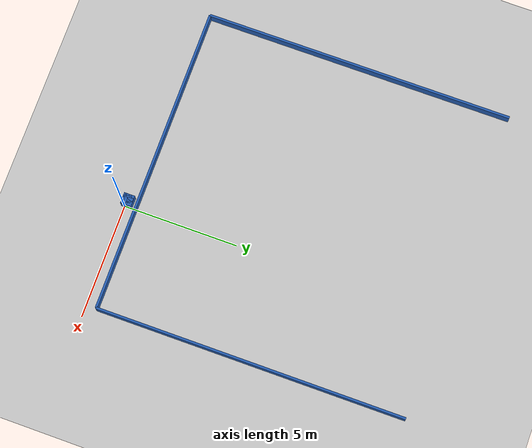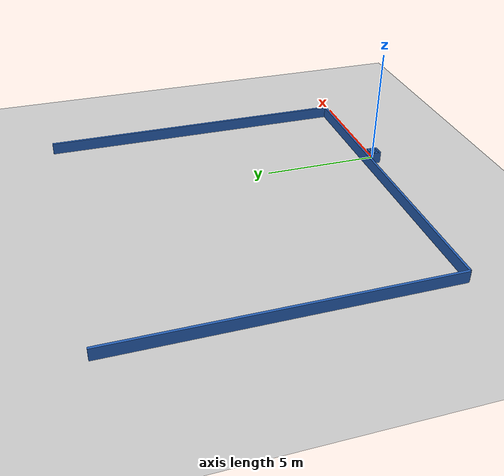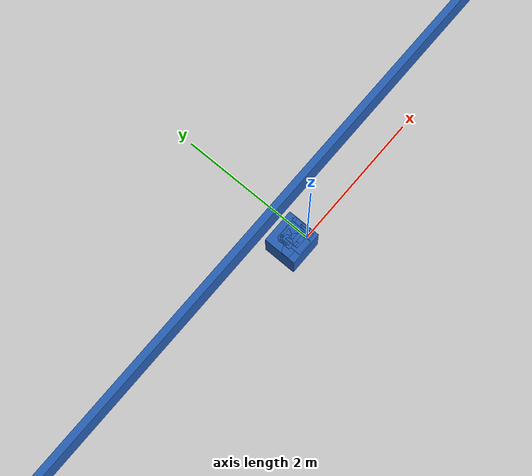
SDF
<?xml version="1.0" ?>
    <sdf version="1.5">
      <world name="default">
        <!-- A global light source -->
        <include>
          <uri>model://sun</uri>
        </include>
        <!-- A ground plane -->
        <include>
          <uri>model://ground_plane</uri>
        </include>

    <model name='libopen_space_final_T2B_90_7'>
      <static>1</static>
      <pose frame=''>-0.225000 0.075000 0.000000 0.000000 0.000000 0.000000</pose>
      <link name='link'>
        <inertial>
          <mass>1</mass>
          <inertia>
            <ixx>0.145833</ixx>
            <ixy>0</ixy>
            <ixz>0</ixz>
            <iyy>0.145833</iyy>
            <iyz>0</iyz>
            <izz>0.125</izz>
          </inertia>
        </inertial>
        <collision name='collision'>
          <geometry>
            <box>
              <size>0.47 0.28 1</size>
            </box>
          </geometry>
          <max_contacts>10</max_contacts>
          <surface>
            <contact>
              <ode/>
            </contact>
            <bounce/>
            <friction>
              <torsional>
                <ode/>
              </torsional>
              <ode/>
            </friction>
          </surface>
        </collision>
        <visual name='visual'>
          <geometry>
            <box>
              <size>0.47 0.28 1</size>
            </box>
          </geometry>
	    <material>
              <ambient>0.152000 0.379000 0.720000 1</ambient>
	      <diffuse>0.152000 0.379000 0.720000 1</diffuse>
          </material>
          <material>
            <script>
              <name>Gazebo/Grey</name>
              <uri>file://media/materials/scripts/gazebo.material</uri>
            </script>
          </material>
        </visual>
        <self_collide>0</self_collide>
        <kinematic>0</kinematic>
        <gravity>1</gravity>
      </link>
      <plugin name='libopen_space_final_T2B_90_7' filename='libopen_space_final_T2B_90_7.so'/>
    </model>

    <model name='libopen_space_final_T2B_81_89'>
      <static>1</static>
      <pose frame=''>-0.225000 0.075000 0.000000 0.000000 0.000000 0.000000</pose>
      <link name='link'>
        <inertial>
          <mass>1</mass>
          <inertia>
            <ixx>0.145833</ixx>
            <ixy>0</ixy>
            <ixz>0</ixz>
            <iyy>0.145833</iyy>
            <iyz>0</iyz>
            <izz>0.125</izz>
          </inertia>
        </inertial>
        <collision name='collision'>
          <geometry>
            <box>
              <size>0.29 0.11 1</size>
            </box>
          </geometry>
          <max_contacts>10</max_contacts>
          <surface>
            <contact>
              <ode/>
            </contact>
            <bounce/>
            <friction>
              <torsional>
                <ode/>
              </torsional>
              <ode/>
            </friction>
          </surface>
        </collision>
        <visual name='visual'>
          <geometry>
            <box>
              <size>0.29 0.11 1</size>
            </box>
          </geometry>
	    <material>
              <ambient>0.152000 0.379000 0.720000 1</ambient>
	      <diffuse>0.152000 0.379000 0.720000 1</diffuse>
          </material>
          <material>
            <script>
              <name>Gazebo/Grey</name>
              <uri>file://media/materials/scripts/gazebo.material</uri>
            </script>
          </material>
        </visual>
        <self_collide>0</self_collide>
        <kinematic>0</kinematic>
        <gravity>1</gravity>
      </link>
      <plugin name='libopen_space_final_T2B_81_89' filename='libopen_space_final_T2B_81_89.so'/>
    </model>

    <model name='libopen_space_final_T2B_103_35'>
      <static>1</static>
      <pose frame=''>-0.225000 0.075000 0.000000 0.000000 0.000000 0.000000</pose>
      <link name='link'>
        <inertial>
          <mass>1</mass>
          <inertia>
            <ixx>0.145833</ixx>
            <ixy>0</ixy>
            <ixz>0</ixz>
            <iyy>0.145833</iyy>
            <iyz>0</iyz>
            <izz>0.125</izz>
          </inertia>
        </inertial>
        <collision name='collision'>
          <geometry>
            <box>
              <size>0.48 0.47 1</size>
            </box>
          </geometry>
          <max_contacts>10</max_contacts>
          <surface>
            <contact>
              <ode/>
            </contact>
            <bounce/>
            <friction>
              <torsional>
                <ode/>
              </torsional>
              <ode/>
            </friction>
          </surface>
        </collision>
        <visual name='visual'>
          <geometry>
            <box>
              <size>0.48 0.47 1</size>
            </box>
          </geometry>
	    <material>
              <ambient>0.152000 0.379000 0.720000 1</ambient>
	      <diffuse>0.152000 0.379000 0.720000 1</diffuse>
          </material>
          <material>
            <script>
              <name>Gazebo/Grey</name>
              <uri>file://media/materials/scripts/gazebo.material</uri>
            </script>
          </material>
        </visual>
        <self_collide>0</self_collide>
        <kinematic>0</kinematic>
        <gravity>1</gravity>
      </link>
      <plugin name='libopen_space_final_T2B_103_35' filename='libopen_space_final_T2B_103_35.so'/>
    </model>

    <model name='libopen_space_final_T2B_115_72'>
      <static>1</static>
      <pose frame=''>-0.225000 0.075000 0.000000 0.000000 0.000000 0.000000</pose>
      <link name='link'>
        <inertial>
          <mass>1</mass>
          <inertia>
            <ixx>0.145833</ixx>
            <ixy>0</ixy>
            <ixz>0</ixz>
            <iyy>0.145833</iyy>
            <iyz>0</iyz>
            <izz>0.125</izz>
          </inertia>
        </inertial>
        <collision name='collision'>
          <geometry>
            <box>
              <size>0.25 0.25 1</size>
            </box>
          </geometry>
          <max_contacts>10</max_contacts>
          <surface>
            <contact>
              <ode/>
            </contact>
            <bounce/>
            <friction>
              <torsional>
                <ode/>
              </torsional>
              <ode/>
            </friction>
          </surface>
        </collision>
        <visual name='visual'>
          <geometry>
            <box>
              <size>0.25 0.25 1</size>
            </box>
          </geometry>
	    <material>
              <ambient>0.152000 0.379000 0.720000 1</ambient>
	      <diffuse>0.152000 0.379000 0.720000 1</diffuse>
          </material>
          <material>
            <script>
              <name>Gazebo/Grey</name>
              <uri>file://media/materials/scripts/gazebo.material</uri>
            </script>
          </material>
        </visual>
        <self_collide>0</self_collide>
        <kinematic>0</kinematic>
        <gravity>1</gravity>
      </link>
      <plugin name='libopen_space_final_T2B_115_72' filename='libopen_space_final_T2B_115_72.so'/>
    </model>

    <model name='libopen_space_final_T2B_77_83'>
      <static>1</static>
      <pose frame=''>-0.225000 0.075000 0.000000 0.000000 0.000000 0.000000</pose>
      <link name='link'>
        <inertial>
          <mass>1</mass>
          <inertia>
            <ixx>0.145833</ixx>
            <ixy>0</ixy>
            <ixz>0</ixz>
            <iyy>0.145833</iyy>
            <iyz>0</iyz>
            <izz>0.125</izz>
          </inertia>
        </inertial>
        <collision name='collision'>
          <geometry>
            <box>
              <size>0.28 0.15 1</size>
            </box>
          </geometry>
          <max_contacts>10</max_contacts>
          <surface>
            <contact>
              <ode/>
            </contact>
            <bounce/>
            <friction>
              <torsional>
                <ode/>
              </torsional>
              <ode/>
            </friction>
          </surface>
        </collision>
        <visual name='visual'>
          <geometry>
            <box>
              <size>0.28 0.15 1</size>
            </box>
          </geometry>
	    <material>
              <ambient>0.152000 0.379000 0.720000 1</ambient>
	      <diffuse>0.152000 0.379000 0.720000 1</diffuse>
          </material>
          <material>
            <script>
              <name>Gazebo/Grey</name>
              <uri>file://media/materials/scripts/gazebo.material</uri>
            </script>
          </material>
        </visual>
        <self_collide>0</self_collide>
        <kinematic>0</kinematic>
        <gravity>1</gravity>
      </link>
      <plugin name='libopen_space_final_T2B_77_83' filename='libopen_space_final_T2B_77_83.so'/>
    </model>

    <model name='libopen_space_final_T2B_118_43'>
      <static>1</static>
      <pose frame=''>-0.225000 0.075000 0.000000 0.000000 0.000000 0.000000</pose>
      <link name='link'>
        <inertial>
          <mass>1</mass>
          <inertia>
            <ixx>0.145833</ixx>
            <ixy>0</ixy>
            <ixz>0</ixz>
            <iyy>0.145833</iyy>
            <iyz>0</iyz>
            <izz>0.125</izz>
          </inertia>
        </inertial>
        <collision name='collision'>
          <geometry>
            <box>
              <size>0.17 0.16 1</size>
            </box>
          </geometry>
          <max_contacts>10</max_contacts>
          <surface>
            <contact>
              <ode/>
            </contact>
            <bounce/>
            <friction>
              <torsional>
                <ode/>
              </torsional>
              <ode/>
            </friction>
          </surface>
        </collision>
        <visual name='visual'>
          <geometry>
            <box>
              <size>0.17 0.16 1</size>
            </box>
          </geometry>
	    <material>
              <ambient>0.152000 0.379000 0.720000 1</ambient>
	      <diffuse>0.152000 0.379000 0.720000 1</diffuse>
          </material>
          <material>
            <script>
              <name>Gazebo/Grey</name>
              <uri>file://media/materials/scripts/gazebo.material</uri>
            </script>
          </material>
        </visual>
        <self_collide>0</self_collide>
        <kinematic>0</kinematic>
        <gravity>1</gravity>
      </link>
      <plugin name='libopen_space_final_T2B_118_43' filename='libopen_space_final_T2B_118_43.so'/>
    </model>

    <model name='libopen_space_final_T2B_85_42'>
      <static>1</static>
      <pose frame=''>-0.225000 0.075000 0.000000 0.000000 0.000000 0.000000</pose>
      <link name='link'>
        <inertial>
          <mass>1</mass>
          <inertia>
            <ixx>0.145833</ixx>
            <ixy>0</ixy>
            <ixz>0</ixz>
            <iyy>0.145833</iyy>
            <iyz>0</iyz>
            <izz>0.125</izz>
          </inertia>
        </inertial>
        <collision name='collision'>
          <geometry>
            <box>
              <size>0.13 0.22 1</size>
            </box>
          </geometry>
          <max_contacts>10</max_contacts>
          <surface>
            <contact>
              <ode/>
            </contact>
            <bounce/>
            <friction>
              <torsional>
                <ode/>
              </torsional>
              <ode/>
            </friction>
          </surface>
        </collision>
        <visual name='visual'>
          <geometry>
            <box>
              <size>0.13 0.22 1</size>
            </box>
          </geometry>
	    <material>
              <ambient>0.152000 0.379000 0.720000 1</ambient>
	      <diffuse>0.152000 0.379000 0.720000 1</diffuse>
          </material>
          <material>
            <script>
              <name>Gazebo/Grey</name>
              <uri>file://media/materials/scripts/gazebo.material</uri>
            </script>
          </material>
        </visual>
        <self_collide>0</self_collide>
        <kinematic>0</kinematic>
        <gravity>1</gravity>
      </link>
      <plugin name='libopen_space_final_T2B_85_42' filename='libopen_space_final_T2B_85_42.so'/>
    </model>

    <model name='libopen_space_final_T2B_57_87'>
      <static>1</static>
      <pose frame=''>-0.225000 0.075000 0.000000 0.000000 0.000000 0.000000</pose>
      <link name='link'>
        <inertial>
          <mass>1</mass>
          <inertia>
            <ixx>0.145833</ixx>
            <ixy>0</ixy>
            <ixz>0</ixz>
            <iyy>0.145833</iyy>
            <iyz>0</iyz>
            <izz>0.125</izz>
          </inertia>
        </inertial>
        <collision name='collision'>
          <geometry>
            <box>
              <size>0.41 0.37 1</size>
            </box>
          </geometry>
          <max_contacts>10</max_contacts>
          <surface>
            <contact>
              <ode/>
            </contact>
            <bounce/>
            <friction>
              <torsional>
                <ode/>
              </torsional>
              <ode/>
            </friction>
          </surface>
        </collision>
        <visual name='visual'>
          <geometry>
            <box>
              <size>0.41 0.37 1</size>
            </box>
          </geometry>
	    <material>
              <ambient>0.152000 0.379000 0.720000 1</ambient>
	      <diffuse>0.152000 0.379000 0.720000 1</diffuse>
          </material>
          <material>
            <script>
              <name>Gazebo/Grey</name>
              <uri>file://media/materials/scripts/gazebo.material</uri>
            </script>
          </material>
        </visual>
        <self_collide>0</self_collide>
        <kinematic>0</kinematic>
        <gravity>1</gravity>
      </link>
      <plugin name='libopen_space_final_T2B_57_87' filename='libopen_space_final_T2B_57_87.so'/>
    </model>

    <model name='libopen_space_final_T2B_145_37'>
      <static>1</static>
      <pose frame=''>-0.225000 0.075000 0.000000 0.000000 0.000000 0.000000</pose>
      <link name='link'>
        <inertial>
          <mass>1</mass>
          <inertia>
            <ixx>0.145833</ixx>
            <ixy>0</ixy>
            <ixz>0</ixz>
            <iyy>0.145833</iyy>
            <iyz>0</iyz>
            <izz>0.125</izz>
          </inertia>
        </inertial>
        <collision name='collision'>
          <geometry>
            <box>
              <size>0.47 0.20 1</size>
            </box>
          </geometry>
          <max_contacts>10</max_contacts>
          <surface>
            <contact>
              <ode/>
            </contact>
            <bounce/>
            <friction>
              <torsional>
                <ode/>
              </torsional>
              <ode/>
            </friction>
          </surface>
        </collision>
        <visual name='visual'>
          <geometry>
            <box>
              <size>0.47 0.20 1</size>
            </box>
          </geometry>
	    <material>
              <ambient>0.152000 0.379000 0.720000 1</ambient>
	      <diffuse>0.152000 0.379000 0.720000 1</diffuse>
          </material>
          <material>
            <script>
              <name>Gazebo/Grey</name>
              <uri>file://media/materials/scripts/gazebo.material</uri>
            </script>
          </material>
        </visual>
        <self_collide>0</self_collide>
        <kinematic>0</kinematic>
        <gravity>1</gravity>
      </link>
      <plugin name='libopen_space_final_T2B_145_37' filename='libopen_space_final_T2B_145_37.so'/>
    </model>

    <model name='libopen_space_final_T2B_73_55'>
      <static>1</static>
      <pose frame=''>-0.225000 0.075000 0.000000 0.000000 0.000000 0.000000</pose>
      <link name='link'>
        <inertial>
          <mass>1</mass>
          <inertia>
            <ixx>0.145833</ixx>
            <ixy>0</ixy>
            <ixz>0</ixz>
            <iyy>0.145833</iyy>
            <iyz>0</iyz>
            <izz>0.125</izz>
          </inertia>
        </inertial>
        <collision name='collision'>
          <geometry>
            <box>
              <size>0.22 0.31 1</size>
            </box>
          </geometry>
          <max_contacts>10</max_contacts>
          <surface>
            <contact>
              <ode/>
            </contact>
            <bounce/>
            <friction>
              <torsional>
                <ode/>
              </torsional>
              <ode/>
            </friction>
          </surface>
        </collision>
        <visual name='visual'>
          <geometry>
            <box>
              <size>0.22 0.31 1</size>
            </box>
          </geometry>
	    <material>
              <ambient>0.152000 0.379000 0.720000 1</ambient>
	      <diffuse>0.152000 0.379000 0.720000 1</diffuse>
          </material>
          <material>
            <script>
              <name>Gazebo/Grey</name>
              <uri>file://media/materials/scripts/gazebo.material</uri>
            </script>
          </material>
        </visual>
        <self_collide>0</self_collide>
        <kinematic>0</kinematic>
        <gravity>1</gravity>
      </link>
      <plugin name='libopen_space_final_T2B_73_55' filename='libopen_space_final_T2B_73_55.so'/>
    </model>

    <model name='libopen_space_final_T2B_56_75'>
      <static>1</static>
      <pose frame=''>-0.225000 0.075000 0.000000 0.000000 0.000000 0.000000</pose>
      <link name='link'>
        <inertial>
          <mass>1</mass>
          <inertia>
            <ixx>0.145833</ixx>
            <ixy>0</ixy>
            <ixz>0</ixz>
            <iyy>0.145833</iyy>
            <iyz>0</iyz>
            <izz>0.125</izz>
          </inertia>
        </inertial>
        <collision name='collision'>
          <geometry>
            <box>
              <size>0.19 0.16 1</size>
            </box>
          </geometry>
          <max_contacts>10</max_contacts>
          <surface>
            <contact>
              <ode/>
            </contact>
            <bounce/>
            <friction>
              <torsional>
                <ode/>
              </torsional>
              <ode/>
            </friction>
          </surface>
        </collision>
        <visual name='visual'>
          <geometry>
            <box>
              <size>0.19 0.16 1</size>
            </box>
          </geometry>
	    <material>
              <ambient>0.152000 0.379000 0.720000 1</ambient>
	      <diffuse>0.152000 0.379000 0.720000 1</diffuse>
          </material>
          <material>
            <script>
              <name>Gazebo/Grey</name>
              <uri>file://media/materials/scripts/gazebo.material</uri>
            </script>
          </material>
        </visual>
        <self_collide>0</self_collide>
        <kinematic>0</kinematic>
        <gravity>1</gravity>
      </link>
      <plugin name='libopen_space_final_T2B_56_75' filename='libopen_space_final_T2B_56_75.so'/>
    </model>

    <model name='libopen_space_final_T2B_51_63'>
      <static>1</static>
      <pose frame=''>-0.225000 0.075000 0.000000 0.000000 0.000000 0.000000</pose>
      <link name='link'>
        <inertial>
          <mass>1</mass>
          <inertia>
            <ixx>0.145833</ixx>
            <ixy>0</ixy>
            <ixz>0</ixz>
            <iyy>0.145833</iyy>
            <iyz>0</iyz>
            <izz>0.125</izz>
          </inertia>
        </inertial>
        <collision name='collision'>
          <geometry>
            <box>
              <size>0.22 0.44 1</size>
            </box>
          </geometry>
          <max_contacts>10</max_contacts>
          <surface>
            <contact>
              <ode/>
            </contact>
            <bounce/>
            <friction>
              <torsional>
                <ode/>
              </torsional>
              <ode/>
            </friction>
          </surface>
        </collision>
        <visual name='visual'>
          <geometry>
            <box>
              <size>0.22 0.44 1</size>
            </box>
          </geometry>
	    <material>
              <ambient>0.152000 0.379000 0.720000 1</ambient>
	      <diffuse>0.152000 0.379000 0.720000 1</diffuse>
          </material>
          <material>
            <script>
              <name>Gazebo/Grey</name>
              <uri>file://media/materials/scripts/gazebo.material</uri>
            </script>
          </material>
        </visual>
        <self_collide>0</self_collide>
        <kinematic>0</kinematic>
        <gravity>1</gravity>
      </link>
      <plugin name='libopen_space_final_T2B_51_63' filename='libopen_space_final_T2B_51_63.so'/>
    </model>

    <model name='libopen_space_final_T2B_112_54'>
      <static>1</static>
      <pose frame=''>-0.225000 0.075000 0.000000 0.000000 0.000000 0.000000</pose>
      <link name='link'>
        <inertial>
          <mass>1</mass>
          <inertia>
            <ixx>0.145833</ixx>
            <ixy>0</ixy>
            <ixz>0</ixz>
            <iyy>0.145833</iyy>
            <iyz>0</iyz>
            <izz>0.125</izz>
          </inertia>
        </inertial>
        <collision name='collision'>
          <geometry>
            <box>
              <size>0.34 0.26 1</size>
            </box>
          </geometry>
          <max_contacts>10</max_contacts>
          <surface>
            <contact>
              <ode/>
            </contact>
            <bounce/>
            <friction>
              <torsional>
                <ode/>
              </torsional>
              <ode/>
            </friction>
          </surface>
        </collision>
        <visual name='visual'>
          <geometry>
            <box>
              <size>0.34 0.26 1</size>
            </box>
          </geometry>
	    <material>
              <ambient>0.152000 0.379000 0.720000 1</ambient>
	      <diffuse>0.152000 0.379000 0.720000 1</diffuse>
          </material>
          <material>
            <script>
              <name>Gazebo/Grey</name>
              <uri>file://media/materials/scripts/gazebo.material</uri>
            </script>
          </material>
        </visual>
        <self_collide>0</self_collide>
        <kinematic>0</kinematic>
        <gravity>1</gravity>
      </link>
      <plugin name='libopen_space_final_T2B_112_54' filename='libopen_space_final_T2B_112_54.so'/>
    </model>

        <model name='bottom_wall'>
          <static>1</static>
          <pose frame=''>-2.25 0.5 0.000000 0.000000 0.000000 1.57079632</pose>
          <link name='link'>
            <inertial>
            <mass>1</mass>
            <inertia>
              <ixx>0.145833</ixx>
              <ixy>0</ixy>
              <ixz>0</ixz>
              <iyy>0.145833</iyy>
              <iyz>0</iyz>
              <izz>0.125</izz>
            </inertia>
            </inertial>
            <collision name='collision'>
            <geometry>
              <box>
              <size>0.1 13.5 1</size>
              </box>
            </geometry>
            <max_contacts>10</max_contacts>
            <surface>
              <contact>
              <ode/>
              </contact>
              <bounce/>
              <friction>
              <torsional>
                <ode/>
              </torsional>
              <ode/>
              </friction>
            </surface>
            </collision>
            <visual name='visual'>
            <geometry>
              <box>
              <size>0.1 13.5 1</size>
              </box>
            </geometry>
            <material>
              <ambient>0.152000 0.379000 0.720000 1</ambient>
            <diffuse>0.152000 0.379000 0.720000 1</diffuse>
            </material>
            <material>
              <script>
              <name>Gazebo/Grey</name>
              <uri>file://media/materials/scripts/gazebo.material</uri>
              </script>
            </material>
            </visual>
            <self_collide>0</self_collide>
            <kinematic>0</kinematic>
            <gravity>1</gravity>
          </link>
        </model>

        <model name='left_wall'>
          <static>1</static>
          <pose frame=''>-9 7.25 0.000000 0.000000 0.000000 0.000000</pose>
          <link name='link'>
            <inertial>
            <mass>1</mass>
            <inertia>
              <ixx>0.145833</ixx>
              <ixy>0</ixy>
              <ixz>0</ixz>
              <iyy>0.145833</iyy>
              <iyz>0</iyz>
              <izz>0.125</izz>
            </inertia>
            </inertial>
            <collision name='collision'>
            <geometry>
              <box>
              <size>0.1 13.5 1</size>
              </box>
            </geometry>
            <max_contacts>10</max_contacts>
            <surface>
              <contact>
              <ode/>
              </contact>
              <bounce/>
              <friction>
              <torsional>
                <ode/>
              </torsional>
              <ode/>
              </friction>
            </surface>
            </collision>
            <visual name='visual'>
            <geometry>
              <box>
              <size>0.1 13.5 1</size>
              </box>
            </geometry>
            <material>
              <ambient>0.152000 0.379000 0.720000 1</ambient>
            <diffuse>0.152000 0.379000 0.720000 1</diffuse>
            </material>
            <material>
              <script>
              <name>Gazebo/Grey</name>
              <uri>file://media/materials/scripts/gazebo.material</uri>
              </script>
            </material>
            </visual>
            <self_collide>0</self_collide>
            <kinematic>0</kinematic>
            <gravity>1</gravity>
          </link>
        </model>

        <model name='right_wall'>
          <static>1</static>
          <pose frame=''>4.5 7.25 0.000000 0.000000 0.000000 0.000000</pose>
          <link name='link'>
            <inertial>
            <mass>1</mass>
            <inertia>
              <ixx>0.145833</ixx>
              <ixy>0</ixy>
              <ixz>0</ixz>
              <iyy>0.145833</iyy>
              <iyz>0</iyz>
              <izz>0.125</izz>
            </inertia>
            </inertial>
            <collision name='collision'>
            <geometry>
              <box>
              <size>0.1 13.5 1</size>
              </box>
            </geometry>
            <max_contacts>10</max_contacts>
            <surface>
              <contact>
              <ode/>
              </contact>
              <bounce/>
              <friction>
              <torsional>
                <ode/>
              </torsional>
              <ode/>
              </friction>
            </surface>
            </collision>
            <visual name='visual'>
            <geometry>
              <box>
              <size>0.1 13.5 1</size>
              </box>
            </geometry>
            <material>
              <ambient>0.152000 0.379000 0.720000 1</ambient>
            <diffuse>0.152000 0.379000 0.720000 1</diffuse>
            </material>
            <material>
              <script>
              <name>Gazebo/Grey</name>
              <uri>file://media/materials/scripts/gazebo.material</uri>
              </script>
            </material>
            </visual>
            <self_collide>0</self_collide>
            <kinematic>0</kinematic>
            <gravity>1</gravity>
          </link>
        </model>

      </world>
    </sdf>"
